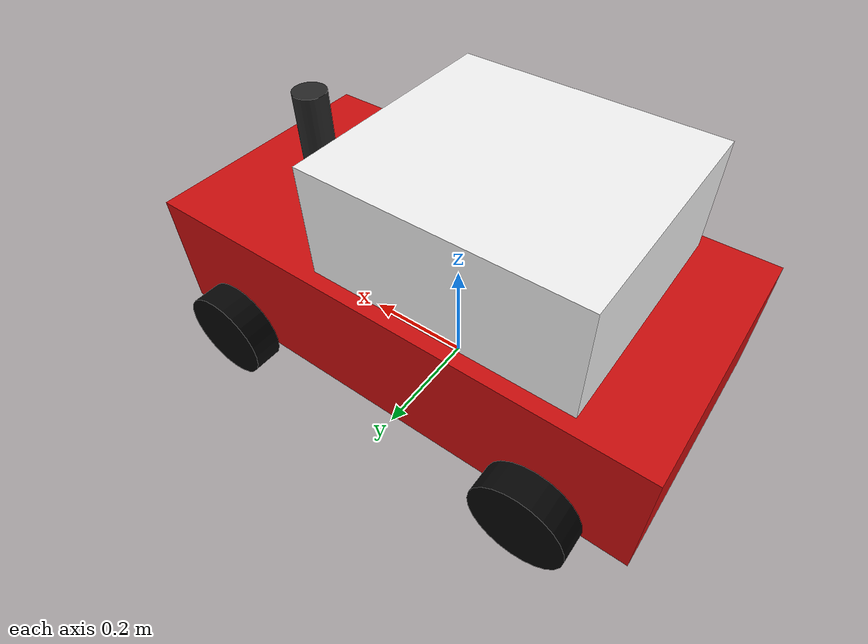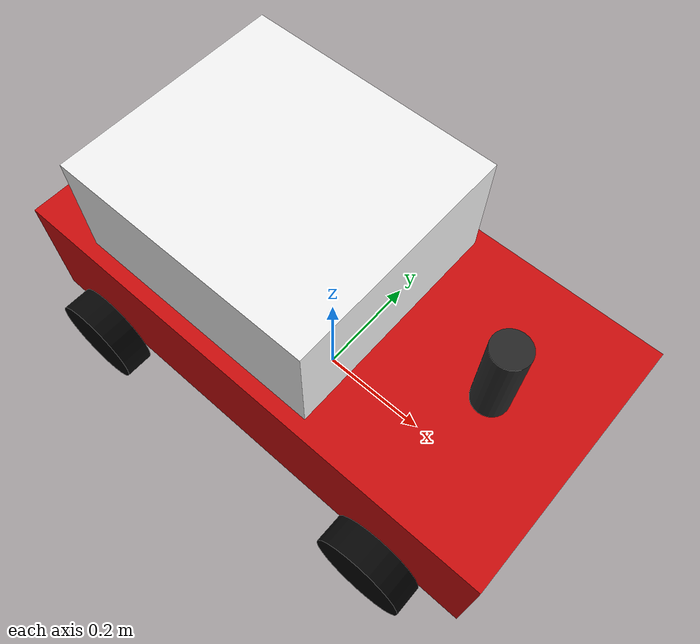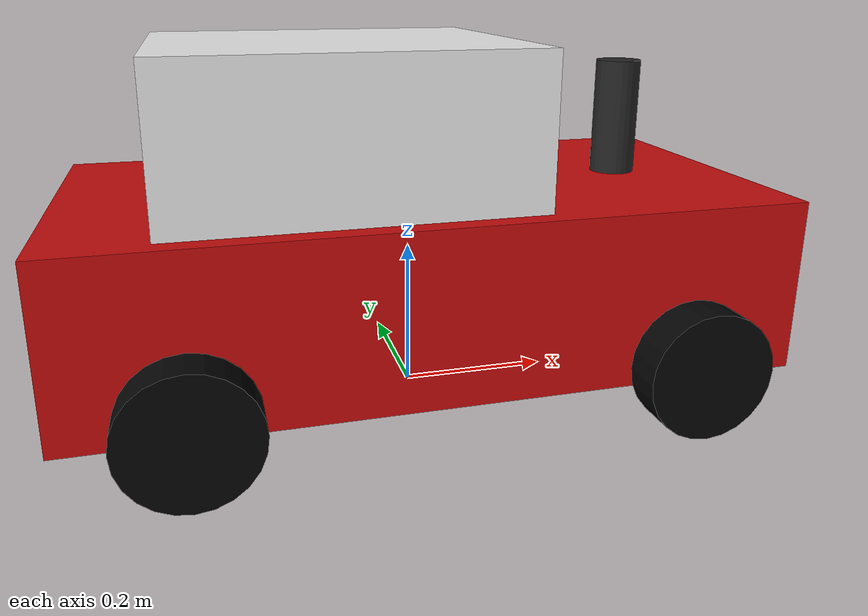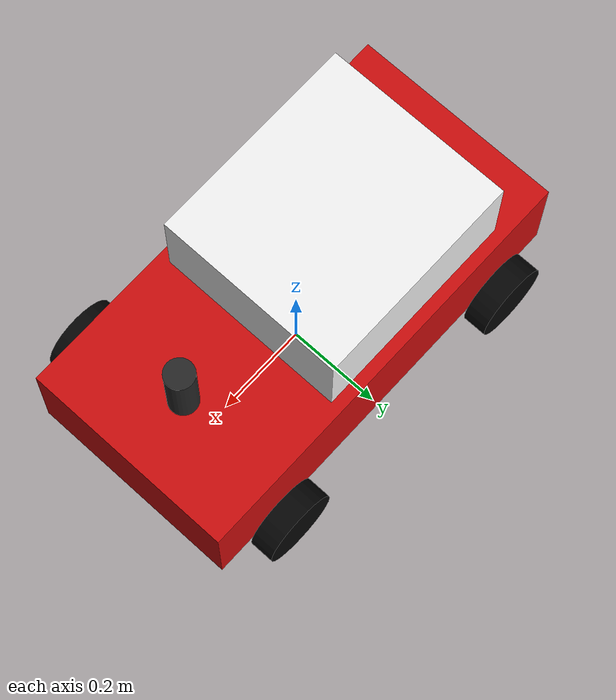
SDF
<?xml version="1.0" ?>
<sdf version="1.6">
  <model name="my_car">
    <static>false</static> <!-- false => model có thể di chuyển -->

    <!-- ================== BASE LINK ================== -->
    <link name="base_link">
      <pose>0 0 0.18 0 0 0</pose> <!-- x y trong_tam roll pitch yaw -->

      <inertial>
  <mass>10.0</mass> <!-- kg -->
  <inertia>
    <ixx>0.8</ixx><iyy>1.0</iyy><izz>1.2</izz> <!-- MO MEN QUAN TINH -->
    <ixy>0</ixy><ixz>0</ixz><iyz>0</iyz>
  </inertia>
</inertial>

      <collision name="base_col">
        <geometry><box><size>0.90 0.45 0.22</size></box></geometry>
      </collision>

      <visual name="base_vis">
  <geometry><box><size>0.90 0.45 0.22</size></box></geometry>
  <material>
    <ambient>0.80 0.05 0.05 1</ambient>
    <diffuse>0.80 0.05 0.05 1</diffuse>
  </material>
</visual>

      <!-- CABIN (small rectangle on top) -->
     <visual name="cabin_vis">
  <pose>-0.10 0 0.20 0 0 0</pose>
  <geometry><box><size>0.45 0.40 0.20</size></box></geometry>
  <material>
    <ambient>0.95 0.95 0.95 1</ambient>
    <diffuse>0.95 0.95 0.95 1</diffuse>
  </material>
</visual>

<!-- ================== FAKE LIDAR BODY (just for display) ================== -->
<visual name="lidar_body_vis">
  <!-- đặt đúng vị trí của sensor lidar -->
  <pose>0.30 0 0.18 0 0 0</pose>

  <geometry>
    <cylinder>
      <radius>0.03</radius>
      <length>0.17</length>
    </cylinder>
  </geometry>

  <material>
    <ambient>0.15 0.15 0.15 1</ambient>
    <diffuse>0.15 0.15 0.15 1</diffuse>
  </material>
</visual>

      <!-- ================== LIDAR (publish /scan) ================== -->
<sensor name="lidar" type="ray">
  <pose>0.30 0 0.22 0 0 0</pose>

  <always_on>true</always_on>
  <visualize>true</visualize>
  <update_rate>20</update_rate>

  <ray>
    <scan>
      <horizontal>
        <samples>120</samples>
        <resolution>1</resolution>
        <min_angle>-1.0472</min_angle> <!-- -60 do -->
        <max_angle>1.0472</max_angle> <!-- +60 do -->
      </horizontal>
    </scan>

    <range>
      <min>0.12</min>
      <max>8.0</max>
      <resolution>0.01</resolution>
    </range>

    <noise> <!-- noise model -->
      <type>gaussian</type>
      <mean>0.0</mean>
      <stddev>0.0</stddev>
    </noise>
  </ray>

  <plugin name="gazebo_ros_laser" filename="libgazebo_ros_ray_sensor.so">
    <ros>
      <remapping>out:=/gazebo_ros_laser/out</remapping>
    </ros>
    <output_type>sensor_msgs/LaserScan</output_type>
    <frame_name>base_link</frame_name>
  </plugin>
</sensor>

    </link>

    <!-- ================== WHEELS ================== -->
    <!-- radius=0.08 => tâm bánh đặt z ~ 0.10 -->
    <!-- y=±0.26 => wheel_separation=0.52 -->

    <!-- FRONT LEFT -->
    <link name="front_left_wheel">
      <pose>0.30 0.26 0.10 0 0 0</pose>
      <inertial><mass>0.6</mass></inertial>

      <collision name="col">
        <pose>0 0 0 1.5708 0 0</pose>
        <geometry><cylinder><radius>0.08</radius><length>0.05</length></cylinder></geometry>
        <surface>
          <friction>
            <ode><mu>1.0</mu><mu2>1.0</mu2></ode> <!-- hệ số ma sát -->
          </friction>
        </surface>
      </collision>

      <visual name="vis">
        <pose>0 0 0 1.5708 0 0</pose>
        <geometry><cylinder><radius>0.08</radius><length>0.05</length></cylinder></geometry>
       <material>
  <ambient>0.02 0.02 0.02 1</ambient>
  <diffuse>0.02 0.02 0.02 1</diffuse>
</material>

      </visual>
    </link>

    <joint name="front_left_wheel_joint" type="revolute">
      <parent>base_link</parent>
      <child>front_left_wheel</child>
      <axis><xyz>0 1 0</xyz></axis>
    </joint>

    <!-- FRONT RIGHT -->
    <link name="front_right_wheel">
      <pose>0.30 -0.26 0.10 0 0 0</pose>
      <inertial><mass>0.6</mass></inertial>

      <collision name="col">
        <pose>0 0 0 1.5708 0 0</pose>
        <geometry><cylinder><radius>0.08</radius><length>0.05</length></cylinder></geometry>
        <surface>
          <friction>
            <ode><mu>1.0</mu><mu2>1.0</mu2></ode>
          </friction>
        </surface>
      </collision>

      <visual name="vis">
        <pose>0 0 0 1.5708 0 0</pose>
        <geometry><cylinder><radius>0.08</radius><length>0.05</length></cylinder></geometry>
       <material>
  <ambient>0.02 0.02 0.02 1</ambient>
  <diffuse>0.02 0.02 0.02 1</diffuse>
</material>

      </visual>
    </link>

    <joint name="front_right_wheel_joint" type="revolute">
      <parent>base_link</parent>
      <child>front_right_wheel</child>
      <axis><xyz>0 1 0</xyz></axis>
    </joint>

    <!-- REAR LEFT (DRIVEN) -->
    <link name="rear_left_wheel">
      <pose>-0.30 0.26 0.10 0 0 0</pose>
      <inertial><mass>0.6</mass></inertial>

      <collision name="col">
        <pose>0 0 0 1.5708 0 0</pose>
        <geometry><cylinder><radius>0.08</radius><length>0.05</length></cylinder></geometry>
        <surface>
          <friction>
            <ode><mu>1.0</mu><mu2>1.0</mu2></ode>
          </friction>
        </surface>
      </collision>

      <visual name="vis">
        <pose>0 0 0 1.5708 0 0</pose>
        <geometry><cylinder><radius>0.08</radius><length>0.05</length></cylinder></geometry>
      <material>
  <ambient>0.02 0.02 0.02 1</ambient>
  <diffuse>0.02 0.02 0.02 1</diffuse>
</material>

      </visual>
    </link>

    <joint name="rear_left_wheel_joint" type="revolute">
      <parent>base_link</parent>
      <child>rear_left_wheel</child>
      <axis><xyz>0 1 0</xyz></axis>
    </joint>

    <!-- REAR RIGHT (DRIVEN) -->
    <link name="rear_right_wheel">
      <pose>-0.30 -0.26 0.10 0 0 0</pose>
      <inertial><mass>0.6</mass></inertial>

      <collision name="col">
        <pose>0 0 0 1.5708 0 0</pose>
        <geometry><cylinder><radius>0.08</radius><length>0.05</length></cylinder></geometry>
        <surface>
          <friction>
            <ode><mu>1.0</mu><mu2>1.0</mu2></ode>
          </friction>
        </surface>
      </collision>

      <visual name="vis">
        <pose>0 0 0 1.5708 0 0</pose>
        <geometry><cylinder><radius>0.08</radius><length>0.05</length></cylinder></geometry>
       <material>
  <ambient>0.02 0.02 0.02 1</ambient>
  <diffuse>0.02 0.02 0.02 1</diffuse>
</material>

      </visual>
    </link>

    <joint name="rear_right_wheel_joint" type="revolute">
      <parent>base_link</parent>
      <child>rear_right_wheel</child>
      <axis><xyz>0 1 0</xyz></axis>
    </joint>
    <!-- ================== DIFF DRIVE PLUGIN ================== -->
    <plugin name="diff_drive" filename="libgazebo_ros_diff_drive.so">
      <ros>
        <namespace>/</namespace>
        <remapping>cmd_vel:=/cmd_vel</remapping>
        <remapping>odom:=/odom</remapping>
      </ros>

      <left_joint>rear_left_wheel_joint</left_joint>
      <right_joint>rear_right_wheel_joint</right_joint>

      <wheel_separation>0.52</wheel_separation>
      <wheel_radius>0.08</wheel_radius>
      <wheel_diameter>0.16</wheel_diameter>

      <update_rate>30</update_rate>
      <publish_odom>true</publish_odom>
      <publish_tf>true</publish_tf>
      <odom_frame>odom</odom_frame>

      <base_frame>base_link</base_frame>
    </plugin>

  </model>
</sdf>
